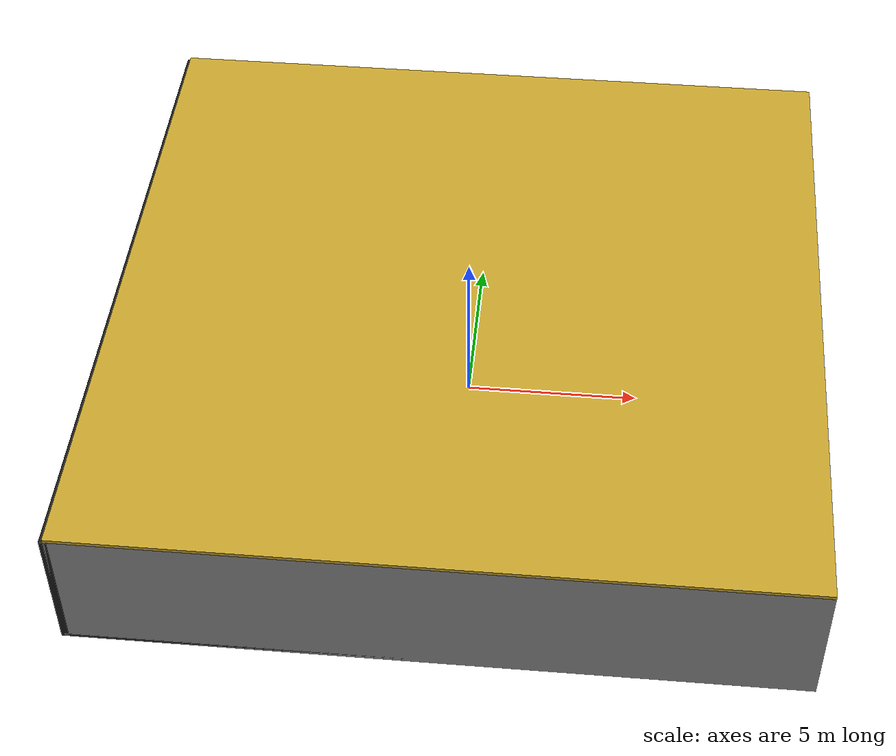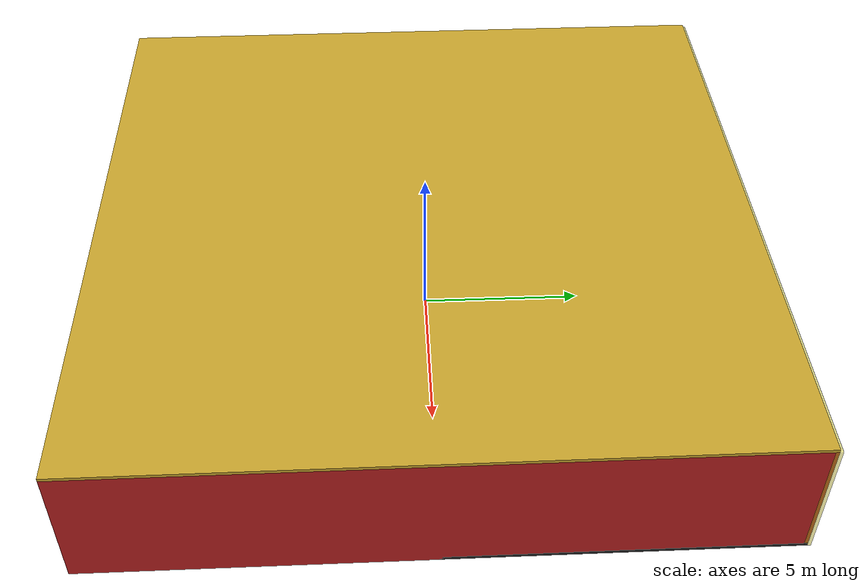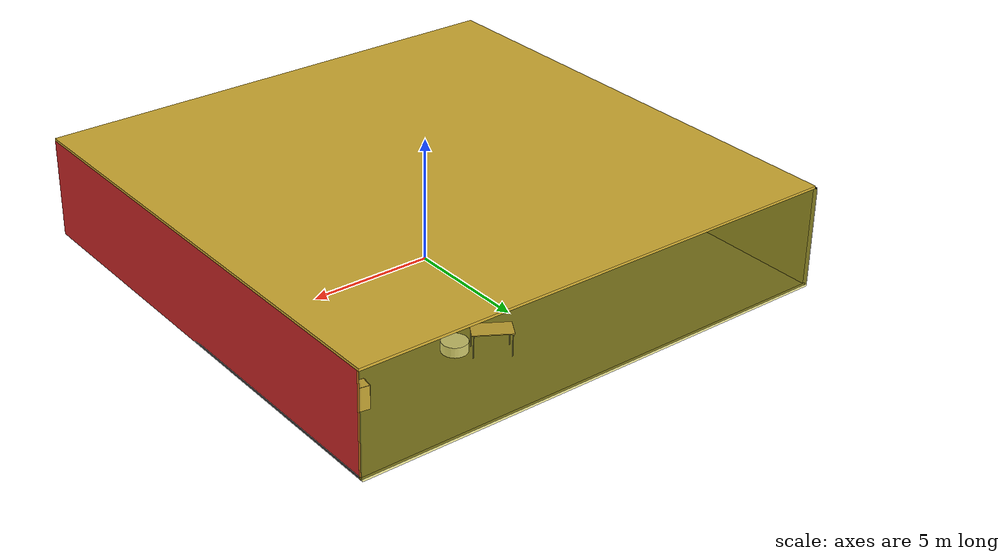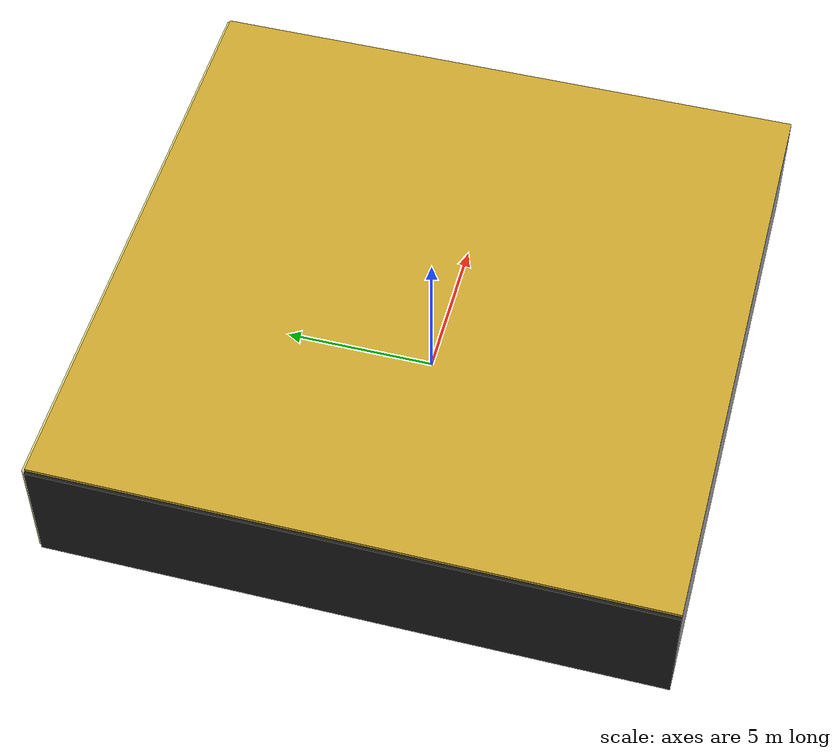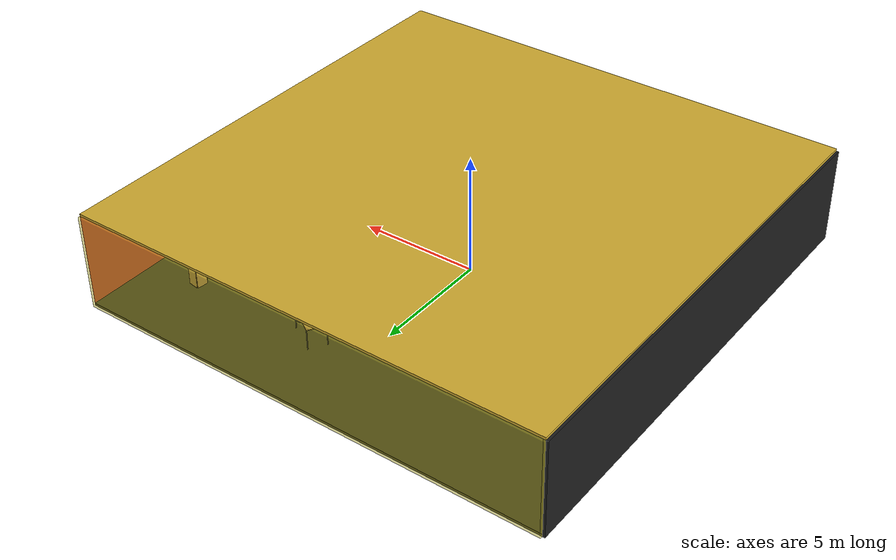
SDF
<sdf version="1.4">
 <world name="default">
  <physics type="ode">
   <max_step_size>0.001</max_step_size>
   <real_time_factor>1</real_time_factor>
   <real_time_update_rate>1000</real_time_update_rate>
   <gravity>0 0 -9.8</gravity>
  </physics>
  <scene><ambient>0.4 0.4 0.4 1</ambient><background>0.7 0.7 0.7 1</background><shadows>1</shadows></scene>
  <model name="Surrounding">
   <static>1</static>
   <link name="Ceiling">
    <collision name="Ceiling_Collision"><geometry><box><size>20 20 0.1</size></box></geometry></collision>
    <visual name="Ceiling_Visual">
     <geometry><box><size>20 20 0.1</size></box></geometry>
     <material>
      <script><uri>file://media/materials/scripts/gazebo.material</uri><name>Gazebo/Gold</name></script>
     </material>
    </visual>
    <pose>0 0 4.05 0 0 0</pose>
   </link>
   <link name="Wall_South">
    <collision name="Wall_South_Collision">
     <geometry><box><size>20 0 4</size></box></geometry>
     <pose>0 0 2 0 -0 0</pose>
    </collision>
    <visual name="Wall_South_Visual">
     <pose>0 0 2 0 -0 0</pose>
     <geometry><box><size>20 0 4</size></box></geometry>
     <material>
      <script><uri>file://media/materials/scripts/gazebo.material</uri><name>Gazebo/Grey</name></script>
     </material>
    </visual>
    <velocity_decay><linear>0</linear><angular>0</angular></velocity_decay>
    <pose>0 -10 0 0 -0 0</pose>
   </link>
   <link name="Wall_East">
    <collision name="Wall_21_Collision">
     <geometry><box><size>20 0 4</size></box></geometry>
     <pose>0 0 2 0 -0 0</pose>
    </collision>
    <visual name="Wall_21_Visual">
     <pose>0 0 2 0 -0 0</pose>
     <geometry><box><size>20 0 4</size></box></geometry>
     <material>
      <script><uri>file://media/materials/scripts/gazebo.material</uri><name>Gazebo/RedBright</name></script>
     </material>
    </visual>
    <velocity_decay><linear>0</linear><angular>0</angular></velocity_decay>
    <pose>10 0 0 0 -0 1.5708</pose>
   </link>
   <link name="Wall_North">
    <collision name="Wall_22_Collision">
     <geometry><box><size>20 0.2 4</size></box></geometry>
     <pose>0 0 2 0 -0 0</pose>
    </collision>
    <visual name="Wall_22_Visual">
     <pose>0 0 2 0 -0 0</pose>
     <geometry><box><size>20 0.2 4</size></box></geometry>
     <material>
      <script>
       <uri>file://media/materials/scripts/gazebo.material</uri>
       <name>Gazebo/YellowTransparent</name>
      </script>
     </material>
    </visual>
    <velocity_decay><linear>0</linear><angular>0</angular></velocity_decay>
    <pose>0 10 0 0 -0 0</pose>
   </link>
   <link name="Wall_West">
    <collision name="Wall_23_Collision">
     <geometry><box><size>20 0.2 4</size></box></geometry>
     <pose>0 0 2 0 -0 0</pose>
    </collision>
    <visual name="Wall_23_Visual">
     <pose>0 0 2 0 -0 0</pose>
     <geometry><box><size>20 0.2 4</size></box></geometry>
     <material>
      <script><uri>file://media/materials/scripts/gazebo.material</uri><name>Gazebo/Black</name></script>
     </material>
    </visual>
    <velocity_decay><linear>0</linear><angular>0</angular></velocity_decay>
    <pose>-10 0 0 0 0 -1.5708</pose>
   </link>
   <link name="Ground_link">
    <collision name="collision">
     <pose>0 0 .05 0 -0 0</pose>
     <geometry><box><size>20 20 0.1</size></box></geometry>
    </collision>
    <visual name="visual">
     <pose>0 0 .05 0 -0 0</pose>
     <geometry><box><size>20 20 0.1</size></box></geometry>
     <material>
      <script><uri>file://media/materials/scripts/gazebo.material</uri><name>Gazebo/Black</name></script>
     </material>
    </visual>
   </link>
   <static>1</static>
  </model>
  <spherical_coordinates>
   <surface_model>EARTH_WGS84</surface_model>
   <latitude_deg>0</latitude_deg>
   <longitude_deg>0</longitude_deg>
   <elevation>0</elevation>
   <heading_deg>0</heading_deg>
  </spherical_coordinates>
  <light name="lightball_0" type="diffuse">
   <diffuse>0.8 0.8 0.8 1</diffuse>
   <specular>0.2 0.2 0.2 1</specular>
   <attenuation>
    <range>100</range>
    <constant>0.7</constant>
    <linear>0.01</linear>
    <quadratic>0.001</quadratic>
   </attenuation>
   <direction>-0.5 0.1 -0.9</direction>
   <pose>4.07375568678 -9.19425613258 1.6670701104 0 0 0</pose>
  </light>
  <light name="lightball_1" type="diffuse">
   <diffuse>0.8 0.8 0.8 1</diffuse>
   <specular>0.2 0.2 0.2 1</specular>
   <attenuation>
    <range>100</range>
    <constant>0.7</constant>
    <linear>0.01</linear>
    <quadratic>0.001</quadratic>
   </attenuation>
   <direction>-0.5 0.1 -0.9</direction>
   <pose>-4.47035149498 5.09370897892 0.938045408822 0 0 0</pose>
  </light>
  <light name="lightball_2" type="diffuse">
   <diffuse>0.8 0.8 0.8 1</diffuse>
   <specular>0.2 0.2 0.2 1</specular>
   <attenuation>
    <range>100</range>
    <constant>0.7</constant>
    <linear>0.01</linear>
    <quadratic>0.001</quadratic>
   </attenuation>
   <direction>-0.5 0.1 -0.9</direction>
   <pose>9.2901540256 1.13810922127 3.20389923955 0 0 0</pose>
  </light>
  <light name="lightball_3" type="diffuse">
   <diffuse>0.8 0.8 0.8 1</diffuse>
   <specular>0.2 0.2 0.2 1</specular>
   <attenuation>
    <range>100</range>
    <constant>0.7</constant>
    <linear>0.01</linear>
    <quadratic>0.001</quadratic>
   </attenuation>
   <direction>-0.5 0.1 -0.9</direction>
   <pose>8.63485963265 0.441659710357 3.17908795643 0 0 0</pose>
  </light>
  <light name="lightball_4" type="diffuse">
   <diffuse>0.8 0.8 0.8 1</diffuse>
   <specular>0.2 0.2 0.2 1</specular>
   <attenuation>
    <range>100</range>
    <constant>0.7</constant>
    <linear>0.01</linear>
    <quadratic>0.001</quadratic>
   </attenuation>
   <direction>-0.5 0.1 -0.9</direction>
   <pose>-6.69297384925 6.75690848602 2.57060814605 0 0 0</pose>
  </light>
  <light name="lightball_5" type="diffuse">
   <diffuse>0.8 0.8 0.8 1</diffuse>
   <specular>0.2 0.2 0.2 1</specular>
   <attenuation>
    <range>100</range>
    <constant>0.7</constant>
    <linear>0.01</linear>
    <quadratic>0.001</quadratic>
   </attenuation>
   <direction>-0.5 0.1 -0.9</direction>
   <pose>4.88852964115 -3.5352568206 2.01580631959 0 0 0</pose>
  </light>
  <light name="lightball_6" type="diffuse">
   <diffuse>0.8 0.8 0.8 1</diffuse>
   <specular>0.2 0.2 0.2 1</specular>
   <attenuation>
    <range>100</range>
    <constant>0.7</constant>
    <linear>0.01</linear>
    <quadratic>0.001</quadratic>
   </attenuation>
   <direction>-0.5 0.1 -0.9</direction>
   <pose>2.7017981298 8.36286758731 0.767451222597 0 0 0</pose>
  </light>
  <light name="lightball_7" type="diffuse">
   <diffuse>0.8 0.8 0.8 1</diffuse>
   <specular>0.2 0.2 0.2 1</specular>
   <attenuation>
    <range>100</range>
    <constant>0.7</constant>
    <linear>0.01</linear>
    <quadratic>0.001</quadratic>
   </attenuation>
   <direction>-0.5 0.1 -0.9</direction>
   <pose>-7.2542643518 -4.34072678213 1.15344145219 0 0 0</pose>
  </light>
  <light name="lightball_8" type="diffuse">
   <diffuse>0.8 0.8 0.8 1</diffuse>
   <specular>0.2 0.2 0.2 1</specular>
   <attenuation>
    <range>100</range>
    <constant>0.7</constant>
    <linear>0.01</linear>
    <quadratic>0.001</quadratic>
   </attenuation>
   <direction>-0.5 0.1 -0.9</direction>
   <pose>-0.809104115648 5.49607696368 3.46328536324 0 0 0</pose>
  </light>
  <include>
   <uri>model://robocup_3Dsim_goal</uri>
   <pose>-4.61341482892 -8.28019265138 0 0 0 2.00092139369</pose>
  </include>
  <include><uri>model://cabinet</uri><pose>0.864362264272 -5.00819199844 0 0 0 1.63652689497</pose></include>
  <include><uri>model://cabinet</uri><pose>1.19664166366 -1.65306887241 0 0 0 1.76467937673</pose></include>
  <include><uri>model://table</uri><pose>2.19574464118 6.7368295147 0 0 0 2.59742958459</pose></include>
  <include><uri>model://table</uri><pose>5.12408119595 -3.75892442211 0 0 0 2.10319183846</pose></include>
  <include>
   <uri>model://robocup_3Dsim_goal</uri>
   <pose>4.82029161078 -1.90482717527 0 0 0 2.89981226295</pose>
  </include>
  <include>
   <uri>model://textured_shapes</uri>
   <pose>3.81389080313 4.56881956834 0 0 0 0.435569011544</pose>
  </include>
  <include>
   <uri>model://robocup_3Dsim_goal</uri>
   <pose>7.26572333656 4.12244216971 0 0 0 0.463842125365</pose>
  </include>
  <include><uri>model://cabinet</uri><pose>7.76612072886 6.82388515827 0 0 0 2.9837211042</pose></include>
 </world>
</sdf>

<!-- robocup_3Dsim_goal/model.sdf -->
<sdf version="1.5">
  <model name="robocup_3d_goal">
    <static>true</static>
    <link name="left_post">
      <pose>0 1.05 0.45 0 0 0</pose>
      <collision name="collision">
        <geometry>
          <cylinder>
            <radius>0.05</radius>
            <length>0.9</length>
          </cylinder>
        </geometry>
      </collision>
      <visual name="visual">
        <geometry>
          <cylinder>
            <radius>0.05</radius>
            <length>0.9</length>
          </cylinder>
        </geometry>
        <material>
          <script>
            <uri>file://media/materials/scripts/gazebo.material</uri>
            <name>Gazebo/ZincYellow</name>
          </script>
        </material>
      </visual>
    </link>
    <link name="left_support_horiz_lower">
      <pose>0.30 1.05 0.01 0 0 0</pose>
      <collision name="collision">
        <geometry>
          <box>
            <size>0.50 0.02 0.02</size>
          </box>
        </geometry>
      </collision>
      <visual name="visual">
        <geometry>
          <box>
            <size>0.50 0.02 0.02</size>
          </box>
        </geometry>
        <material>
          <script>
            <uri>file://media/materials/scripts/gazebo.material</uri>
            <name>Gazebo/White</name>
          </script>
        </material>
      </visual>
    </link>
    <link name="left_support_horiz_upper">
      <pose>0.30 1.05 0.79 0 0 0</pose>
      <collision name="collision">
        <geometry>
          <box>
            <size>0.50 0.02 0.02</size>
          </box>
        </geometry>
      </collision>
      <visual name="visual">
        <geometry>
          <box>
            <size>0.50 0.02 0.02</size>
          </box>
        </geometry>
        <material>
          <script>
            <uri>file://media/materials/scripts/gazebo.material</uri>
            <name>Gazebo/White</name>
          </script>
        </material>
      </visual>
    </link>
    <link name="left_support_vertical">
      <pose>0.56 1.05 0.4 0 1.5708 0</pose>
      <collision name="collision">
        <geometry>
          <box>
            <size>0.80 0.02 0.02</size>
          </box>
        </geometry>
      </collision>
      <visual name="visual">
        <geometry>
          <box>
            <size>0.80 0.02 0.02</size>
          </box>
        </geometry>
        <material>
          <script>
            <uri>file://media/materials/scripts/gazebo.material</uri>
            <name>Gazebo/White</name>
          </script>
        </material>
      </visual>
    </link>
    <link name="right_support_horiz_lower">
      <pose>0.30 -1.05 0.01 0 0 0</pose>
      <collision name="collision">
        <geometry>
          <box>
            <size>0.50 0.02 0.02</size>
          </box>
        </geometry>
      </collision>
      <visual name="visual">
        <geometry>
          <box>
            <size>0.50 0.02 0.02</size>
          </box>
        </geometry>
        <material>
          <script>
            <uri>file://media/materials/scripts/gazebo.material</uri>
            <name>Gazebo/White</name>
          </script>
        </material>
      </visual>
    </link>
    <link name="right_support_horiz_upper">
      <pose>0.30 -1.05 0.79 0 0 0</pose>
      <collision name="collision">
        <geometry>
          <box>
            <size>0.50 0.02 0.02</size>
          </box>
        </geometry>
      </collision>
      <visual name="visual">
        <geometry>
          <box>
            <size>0.50 0.02 0.02</size>
          </box>
        </geometry>
        <material>
          <script>
            <uri>file://media/materials/scripts/gazebo.material</uri>
            <name>Gazebo/White</name>
          </script>
        </material>
      </visual>
    </link>
    <link name="right_support_vertical">
      <pose>0.56 -1.05 0.4 0 1.5708 0</pose>
      <collision name="collision">
        <geometry>
          <box>
            <size>0.80 0.02 0.02</size>
          </box>
        </geometry>
      </collision>
      <visual name="visual">
        <geometry>
          <box>
            <size>0.80 0.02 0.02</size>
          </box>
        </geometry>
        <material>
          <script>
            <uri>file://media/materials/scripts/gazebo.material</uri>
            <name>Gazebo/White</name>
          </script>
        </material>
      </visual>
    </link>
    <link name="center_support_horiz_lower">
      <pose>0.56 0 0.01 0 1.5708 0</pose>
      <collision name="collision">
        <geometry>
          <box>
            <size>0.02 2.08 0.02</size>
          </box>
        </geometry>
      </collision>
      <visual name="visual">
        <geometry>
          <box>
            <size>0.02 2.08 0.02</size>
          </box>
        </geometry>
        <material>
          <script>
            <uri>file://media/materials/scripts/gazebo.material</uri>
            <name>Gazebo/White</name>
          </script>
        </material>
      </visual>
    </link>
    <link name="center_support_horiz_upper">
      <pose>0.56 0 0.79 0 1.5708 0</pose>
      <collision name="collision">
        <geometry>
          <box>
            <size>0.02 2.08 0.02</size>
          </box>
        </geometry>
      </collision>
      <visual name="visual">
        <geometry>
          <box>
            <size>0.02 2.08 0.02</size>
          </box>
        </geometry>
        <material>
          <script>
            <uri>file://media/materials/scripts/gazebo.material</uri>
            <name>Gazebo/White</name>
          </script>
        </material>
      </visual>
    </link>
    <link name="right_post">
      <pose>0 -1.05 0.45 0 0 0</pose>
      <collision name="collision">
        <geometry>
          <cylinder>
            <radius>0.05</radius>
            <length>0.9</length>
          </cylinder>
        </geometry>
      </collision>
      <visual name="visual">
        <geometry>
          <cylinder>
            <radius>0.05</radius>
            <length>0.9</length>
          </cylinder>
        </geometry>
        <material>
          <script>
            <uri>file://media/materials/scripts/gazebo.material</uri>
            <name>Gazebo/ZincYellow</name>
          </script>
        </material>
      </visual>
    </link>
    <link name="crossbar">
      <pose>0 0 0.85 1.57 1.57 0</pose>
      <collision name="collision">
        <geometry>
          <cylinder>
            <radius>0.05</radius>
            <length>2.0</length>
          </cylinder>
        </geometry>
      </collision>
      <visual name="visual">
        <geometry>
          <cylinder>
            <radius>0.05</radius>
            <length>2.0</length>
          </cylinder>
        </geometry>
        <material>
          <script>
            <uri>file://media/materials/scripts/gazebo.material</uri>
            <name>Gazebo/ZincYellow</name>
          </script>
        </material>
      </visual>
    </link>
    <link name="center_net">
      <pose>0.56 0 0.40 0 0 0</pose>
      <collision name="collision">
        <geometry>
          <box>
            <size>0.01 2.1 0.80</size>
          </box>
        </geometry>
      </collision>
      <visual name="visual">
        <geometry>
          <box>
            <size>0.01 2.1 0.80</size>
          </box>
        </geometry>
        <material>
          <script>
            <uri>model://../model_source/models/robocup09_spl_field/materials/scripts/</uri>
            <uri>model://../model_source/models/robocup09_spl_field/materials/textures/</uri>
            <name>RoboCup/Net</name>
          </script>
        </material>
      </visual>
    </link>
    <link name="left_net">
      <pose>0.30 1.05 0.40 0 0 0</pose>
      <collision name="collision">
        <geometry>
          <box>
            <size>0.50 0.01 0.76</size>
          </box>
        </geometry>
      </collision>
      <visual name="visual">
        <geometry>
          <box>
            <size>0.50 0.01 0.76</size>
          </box>
        </geometry>
        <material>
          <script>
            <uri>model://../model_source/models/robocup09_spl_field/materials/scripts/</uri>
            <uri>model://../model_source/models/robocup09_spl_field/materials/textures/</uri>
            <name>RoboCup/Net</name>
          </script>
        </material>
      </visual>
    </link>
    <link name="right_net">
      <pose>0.30 -1.05 0.40 0 0 0</pose>
      <collision name="collision">
        <geometry>
          <box>
            <size>0.50 0.01 0.76</size>
          </box>
        </geometry>
      </collision>
      <visual name="visual">
        <geometry>
          <box>
            <size>0.50 0.01 0.76</size>
          </box>
        </geometry>
        <material>
          <script>
            <uri>model://../model_source/models/robocup09_spl_field/materials/scripts/</uri>
            <uri>model://../model_source/models/robocup09_spl_field/materials/textures/</uri>
            <name>RoboCup/Net</name>
          </script>
        </material>
      </visual>
    </link>
  </model>
</sdf>

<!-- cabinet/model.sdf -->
<sdf version="1.5">
  <model name="cabinet">
    <static>true</static>
    <link name="cabinet_bottom_plate">
      <inertial>
        <pose>0 0 -1 0 0 0</pose>
        <inertia>
          <ixx>2.050000</ixx>
          <ixy>0</ixy>
          <ixz>0</ixz>
          <iyy>2.050000</iyy>
          <iyz>0</iyz>
          <izz>2.050000</izz>
        </inertia>
        <mass>25.000000</mass>
      </inertial>
      <collision name="cabinet_bottom_plate_geom">
        <pose>0 0 0.010000 0 0 0</pose>
        <geometry>
          <box>
            <size>0.450000 0.450000 0.020000</size>
          </box>
        </geometry>
      </collision>
      <visual name="cabinet_bottom_plate_geom_visual">
        <pose>0 0 0.010000 0 0 0</pose>
        <geometry>
          <box>
            <size>0.450000 0.450000 0.020000</size>
          </box>
        </geometry>
        <material>
          <script>
            <uri>model://media/materials/scripts/gazebo.material</uri>
            <name>Gazebo/Wood</name>
          </script>
        </material>
      </visual>
      <collision name="cabinet_bottom_plate_geom_cabinet_back_plate">
        <pose>0.235000 0 0.510000 0 0 0</pose>
        <geometry>
          <box>
            <size>0.020000 0.450000 1.020000</size>
          </box>
        </geometry>
      </collision>
      <visual name="cabinet_bottom_plate_geom_cabinet_back_plate_visual">
        <pose>0.235000 0 0.510000 0 0 0</pose>
        <geometry>
          <box>
            <size>0.020000 0.450000 1.020000</size>
          </box>
        </geometry>
        <material>
          <script>
            <uri>model://media/materials/scripts/gazebo.material</uri>
            <name>Gazebo/Wood</name>
          </script>
        </material>
      </visual>
      <collision name="cabinet_bottom_plate_geom_cabinet_left_plate">
        <pose>0 0.235000 0.510000 0 0 0</pose>
        <geometry>
          <box>
            <size>0.450000 0.020000 1.020000</size>
          </box>
        </geometry>
      </collision>
      <visual name="cabinet_bottom_plate_geom_cabinet_left_plate_visual">
        <pose>0 0.235000 0.510000 0 0 0</pose>
        <geometry>
          <box>
            <size>0.450000 0.020000 1.020000</size>
          </box>
        </geometry>
        <material>
          <script>
            <uri>model://media/materials/scripts/gazebo.material</uri>
            <name>Gazebo/Wood</name>
          </script>
        </material>
      </visual>
      <collision name="cabinet_bottom_plate_geom_cabinet_middle_plate">
        <pose>0 0 0.510000 0 0 0</pose>
        <geometry>
          <box>
            <size>0.450000 0.450000 0.020000</size>
          </box>
        </geometry>
      </collision>
      <visual name="cabinet_bottom_plate_geom_cabinet_middle_plate_visual">
        <pose>0 0 0.510000 0 0 0</pose>
        <geometry>
          <box>
            <size>0.450000 0.450000 0.020000</size>
          </box>
        </geometry>
        <material>
          <script>
            <uri>model://media/materials/scripts/gazebo.material</uri>
            <name>Gazebo/Wood</name>
          </script>
        </material>
      </visual>
      <collision name="cabinet_bottom_plate_geom_cabinet_right_plate">
        <pose>0 -0.235000 0.510000 0 0 0</pose>
        <geometry>
          <box>
            <size>0.450000 0.020000 1.020000</size>
          </box>
        </geometry>
      </collision>
      <visual name="cabinet_bottom_plate_geom_cabinet_right_plate_visual">
        <pose>0 -0.235000 0.510000 0 0 0</pose>
        <geometry>
          <box>
            <size>0.450000 0.020000 1.020000</size>
          </box>
        </geometry>
        <material>
          <script>
            <uri>model://media/materials/scripts/gazebo.material</uri>
            <name>Gazebo/Wood</name>
          </script>
        </material>
      </visual>
      <collision name="cabinet_bottom_plate_geom_cabinet_top_plate">
        <pose>0 0 1.010000 0 0 0</pose>
        <geometry>
          <box>
            <size>0.450000 0.450000 0.020000</size>
          </box>
        </geometry>
      </collision>
      <visual name="cabinet_bottom_plate_geom_cabinet_top_plate_visual">
        <pose>0 0 1.010000 0 0 0</pose>
        <geometry>
          <box>
            <size>0.450000 0.450000 0.020000</size>
          </box>
        </geometry>
        <material>
          <script>
            <uri>model://media/materials/scripts/gazebo.material</uri>
            <name>Gazebo/Wood</name>
          </script>
        </material>
      </visual>
    </link>
  </model>
</sdf>

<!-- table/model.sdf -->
<sdf version="1.5">
  <model name="table">
    <static>true</static>
    <link name="link">
      <collision name="surface">
        <pose>0 0 1.0 0 0 0</pose>
        <geometry>
          <box>
            <size>1.5 0.8 0.03</size>
          </box>
        </geometry>
        <surface>
          <friction>
            <ode>
              <mu>0.6</mu>
              <mu2>0.6</mu2>
            </ode>
          </friction>
        </surface>
      </collision>
      <visual name="visual1">
        <pose>0 0 1.0 0 0 0</pose>
        <geometry>
          <box>
            <size>1.5 0.8 0.03</size>
          </box>
        </geometry>
        <material>
          <script>
            <uri>model://media/materials/scripts/gazebo.material</uri>
            <name>Gazebo/Wood</name>
          </script>
        </material>
      </visual>
      <collision name="front_left_leg">
        <pose>0.68 0.38 0.5 0 0 0</pose>
        <geometry>
          <cylinder>
            <radius>0.02</radius>
            <length>1.0</length>
          </cylinder>
        </geometry>
      </collision>
      <visual name="front_left_leg">
        <pose>0.68 0.38 0.5 0 0 0</pose>
        <geometry>
          <cylinder>
            <radius>0.02</radius>
            <length>1.0</length>
          </cylinder>
        </geometry>
        <material>
          <script>
            <uri>model://media/materials/scripts/gazebo.material</uri>
            <name>Gazebo/Grey</name>
          </script>
        </material>
      </visual>
      <collision name="front_right_leg">
        <pose>0.68 -0.38 0.5 0 0 0</pose>
        <geometry>
          <cylinder>
            <radius>0.02</radius>
            <length>1.0</length>
          </cylinder>
        </geometry>
      </collision>
      <visual name="front_right_leg">
        <pose>0.68 -0.38 0.5 0 0 0</pose>
        <geometry>
          <cylinder>
            <radius>0.02</radius>
            <length>1.0</length>
          </cylinder>
        </geometry>
        <material>
          <script>
            <uri>model://media/materials/scripts/gazebo.material</uri>
            <name>Gazebo/Grey</name>
          </script>
        </material>
      </visual>
      <collision name="back_right_leg">
        <pose>-0.68 -0.38 0.5 0 0 0</pose>
        <geometry>
          <cylinder>
            <radius>0.02</radius>
            <length>1.0</length>
          </cylinder>
        </geometry>
      </collision>
      <visual name="back_right_leg">
        <pose>-0.68 -0.38 0.5 0 0 0</pose>
        <geometry>
          <cylinder>
            <radius>0.02</radius>
            <length>1.0</length>
          </cylinder>
        </geometry>
        <material>
          <script>
            <uri>model://media/materials/scripts/gazebo.material</uri>
            <name>Gazebo/Grey</name>
          </script>
        </material>
      </visual>
      <collision name="back_left_leg">
        <pose>-0.68 0.38 0.5 0 0 0</pose>
        <geometry>
          <cylinder>
            <radius>0.02</radius>
            <length>1.0</length>
          </cylinder>
        </geometry>
      </collision>
      <visual name="back_left_leg">
        <pose>-0.68 0.38 0.5 0 0 0</pose>
        <geometry>
          <cylinder>
            <radius>0.02</radius>
            <length>1.0</length>
          </cylinder>
        </geometry>
        <material>
          <script>
            <uri>model://media/materials/scripts/gazebo.material</uri>
            <name>Gazebo/Grey</name>
          </script>
        </material>
      </visual>
    </link>
  </model>
</sdf>

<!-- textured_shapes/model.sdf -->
<sdf version="1.6">
  <model name="textured_shapes">
    <pose>0 0 0.5 0 0 0</pose>
    <link name="box">
      <pose>0 -1.5 0 0 0 0</pose>
      <collision name="collision">
        <geometry>
          <box>
            <size>1 1 1</size>
          </box>
        </geometry>
      </collision>
      <visual name="visual">
        <geometry>
          <box>
            <size>1 1 1</size>
          </box>
        </geometry>
        <material>
          <script>
            <uri>model://../model_source/models/textured_shapes/materials/scripts</uri>
            <uri>model://../model_source/models/textured_shapes/materials/textures</uri>
            <name>TexturedShape/Squares</name>
          </script>
        </material>
      </visual>
    </link>
    <link name="sphere">
      <collision name="collision">
        <geometry>
          <sphere>
            <radius>0.5</radius>
          </sphere>
        </geometry>
      </collision>
      <visual name="visual">
        <geometry>
          <sphere>
            <radius>0.5</radius>
          </sphere>
        </geometry>
        <material>
          <script>
            <uri>model://../model_source/models/textured_shapes/materials/scripts</uri>
            <uri>model://../model_source/models/textured_shapes/materials/textures</uri>
            <name>TexturedShape/Squares</name>
          </script>
        </material>
      </visual>
    </link>
    <link name="cylinder">
      <pose>0 1.5 0 0 0 0</pose>
      <collision name="collision">
        <geometry>
          <cylinder>
            <radius>0.5</radius>
            <length>1</length>
          </cylinder>
        </geometry>
      </collision>
      <visual name="visual">
        <geometry>
          <cylinder>
            <radius>0.5</radius>
            <length>1</length>
          </cylinder>
        </geometry>
        <material>
          <script>
            <uri>model://../model_source/models/textured_shapes/materials/scripts</uri>
            <uri>model://../model_source/models/textured_shapes/materials/textures</uri>
            <name>TexturedShape/Squares</name>
          </script>
        </material>
      </visual>
    </link>
  </model>
</sdf>
